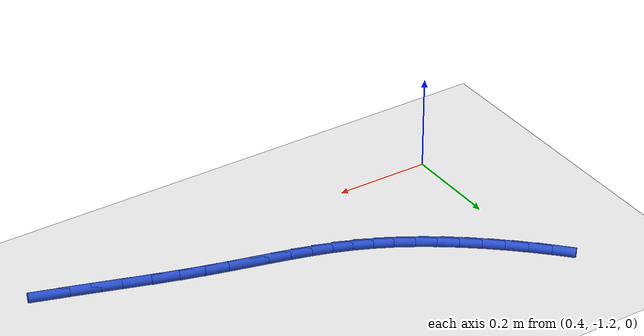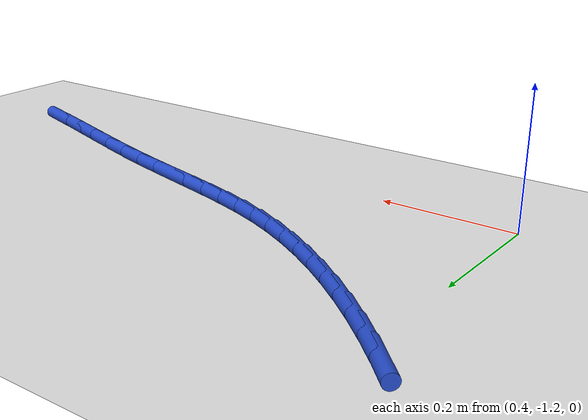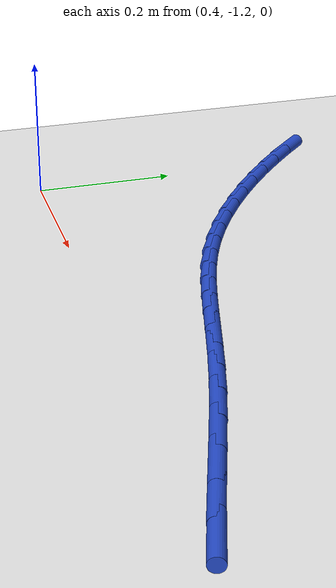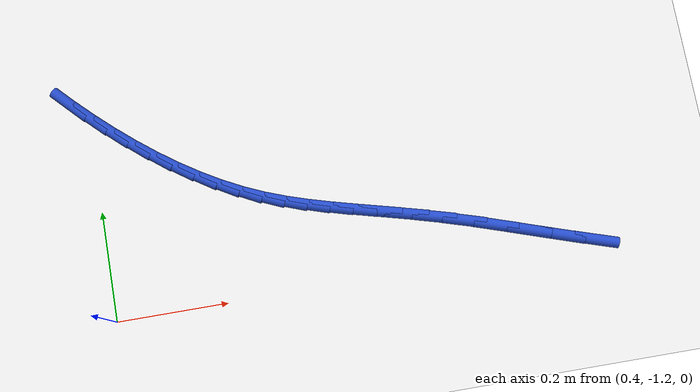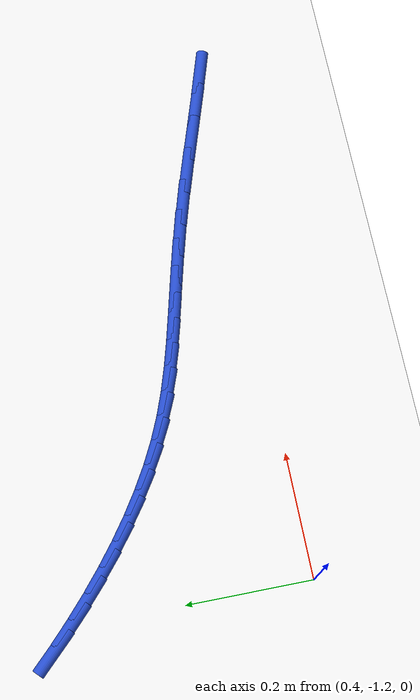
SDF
<sdf version="1.6">
 <world name="default">
  <model name="ground_plane">
   <static>1</static>
   <link name="link">
    <collision name="collision">
     <geometry><plane><normal>0 0 1</normal><size>100 100</size></plane></geometry>
     <surface><friction><ode><mu>100</mu><mu2>50</mu2></ode></friction></surface>
    </collision>
    <visual name="visual">
     <cast_shadows>0</cast_shadows>
     <geometry><plane><normal>0 0 1</normal><size>100 100</size></plane></geometry>
     <material>
      <script><uri>file://media/materials/scripts/gazebo.material</uri><name>Gazebo/WhiteGlow</name></script>
     </material>
    </visual>
   </link>
  </model>
  <model name="line">
   <link name="link_129">
    <pose>1.265800692312108 -1.1981198632071832 0.01 0 1.57 -0.30989875900197233</pose>
    <collision name="collision">
     <geometry><cylinder><radius>0.01</radius><length>0.08</length></cylinder></geometry>
    </collision>
    <visual name="visual">
     <material>
      <script><name>Gazebo/Blue</name><uri>file://media/materials/scripts/gazebo.material</uri></script>
     </material>
     <geometry><cylinder><radius>0.01</radius><length>0.08</length></cylinder></geometry>
    </visual>
   </link>
   <link name="link_130">
    <pose>1.2083232273353477 -1.1797146662145381 0.01 0 1.57 -0.3209708574697782</pose>
    <collision name="collision">
     <geometry><cylinder><radius>0.01</radius><length>0.08</length></cylinder></geometry>
    </collision>
    <visual name="visual">
     <material>
      <script><name>Gazebo/Blue</name><uri>file://media/materials/scripts/gazebo.material</uri></script>
     </material>
     <geometry><cylinder><radius>0.01</radius><length>0.08</length></cylinder></geometry>
    </visual>
   </link>
   <link name="link_131">
    <pose>1.150829657418159 -1.1605999383768624 0.01 0 1.57 -0.3222626188145715</pose>
    <collision name="collision">
     <geometry><cylinder><radius>0.01</radius><length>0.08</length></cylinder></geometry>
    </collision>
    <visual name="visual">
     <material>
      <script><name>Gazebo/Blue</name><uri>file://media/materials/scripts/gazebo.material</uri></script>
     </material>
     <geometry><cylinder><radius>0.01</radius><length>0.08</length></cylinder></geometry>
    </visual>
   </link>
   <link name="link_132">
    <pose>1.0943073004221666 -1.1417269882321417 0.01 0 1.57 -0.31334680897451433</pose>
    <collision name="collision">
     <geometry><cylinder><radius>0.01</radius><length>0.08</length></cylinder></geometry>
    </collision>
    <visual name="visual">
     <material>
      <script><name>Gazebo/Blue</name><uri>file://media/materials/scripts/gazebo.material</uri></script>
     </material>
     <geometry><cylinder><radius>0.01</radius><length>0.08</length></cylinder></geometry>
    </visual>
   </link>
   <link name="link_133">
    <pose>1.0397434742089908 -1.1240471243183592 0.01 0 1.57 -0.2931323162996784</pose>
    <collision name="collision">
     <geometry><cylinder><radius>0.01</radius><length>0.08</length></cylinder></geometry>
    </collision>
    <visual name="visual">
     <material>
      <script><name>Gazebo/Blue</name><uri>file://media/materials/scripts/gazebo.material</uri></script>
     </material>
     <geometry><cylinder><radius>0.01</radius><length>0.08</length></cylinder></geometry>
    </visual>
   </link>
   <link name="link_134">
    <pose>0.9880743739879655 -1.108451982458618 0.01 0 1.57 -0.27078050237366325</pose>
    <collision name="collision">
     <geometry><cylinder><radius>0.01</radius><length>0.08</length></cylinder></geometry>
    </collision>
    <visual name="visual">
     <material>
      <script><name>Gazebo/Blue</name><uri>file://media/materials/scripts/gazebo.material</uri></script>
     </material>
     <geometry><cylinder><radius>0.01</radius><length>0.08</length></cylinder></geometry>
    </visual>
   </link>
   <link name="link_135">
    <pose>0.9394931729404226 -1.0949659089352126 0.01 0 1.57 -0.2560740211445743</pose>
    <collision name="collision">
     <geometry><cylinder><radius>0.01</radius><length>0.08</length></cylinder></geometry>
    </collision>
    <visual name="visual">
     <material>
      <script><name>Gazebo/Blue</name><uri>file://media/materials/scripts/gazebo.material</uri></script>
     </material>
     <geometry><cylinder><radius>0.01</radius><length>0.08</length></cylinder></geometry>
    </visual>
   </link>
   <link name="link_136">
    <pose>0.8936320742084444 -1.0829584599577193 0.01 0 1.57 -0.25134209338558244</pose>
    <collision name="collision">
     <geometry><cylinder><radius>0.01</radius><length>0.08</length></cylinder></geometry>
    </collision>
    <visual name="visual">
     <material>
      <script><name>Gazebo/Blue</name><uri>file://media/materials/scripts/gazebo.material</uri></script>
     </material>
     <geometry><cylinder><radius>0.01</radius><length>0.08</length></cylinder></geometry>
    </visual>
   </link>
   <link name="link_137">
    <pose>0.8501094726858519 -1.0717830741122178 0.01 0 1.57 -0.2584830062230151</pose>
    <collision name="collision">
     <geometry><cylinder><radius>0.01</radius><length>0.08</length></cylinder></geometry>
    </collision>
    <visual name="visual">
     <material>
      <script><name>Gazebo/Blue</name><uri>file://media/materials/scripts/gazebo.material</uri></script>
     </material>
     <geometry><cylinder><radius>0.01</radius><length>0.08</length></cylinder></geometry>
    </visual>
   </link>
   <link name="link_138">
    <pose>0.8085437632664624 -1.0607931899847878 0.01 0 1.57 -0.2788800476282161</pose>
    <collision name="collision">
     <geometry><cylinder><radius>0.01</radius><length>0.08</length></cylinder></geometry>
    </collision>
    <visual name="visual">
     <material>
      <script><name>Gazebo/Blue</name><uri>file://media/materials/scripts/gazebo.material</uri></script>
     </material>
     <geometry><cylinder><radius>0.01</radius><length>0.08</length></cylinder></geometry>
    </visual>
   </link>
   <link name="link_139">
    <pose>0.7685533408440939 -1.0493422461615078 0.01 0 1.57 -0.31305704497614156</pose>
    <collision name="collision">
     <geometry><cylinder><radius>0.01</radius><length>0.08</length></cylinder></geometry>
    </collision>
    <visual name="visual">
     <material>
      <script><name>Gazebo/Blue</name><uri>file://media/materials/scripts/gazebo.material</uri></script>
     </material>
     <geometry><cylinder><radius>0.01</radius><length>0.08</length></cylinder></geometry>
    </visual>
   </link>
   <link name="link_140">
    <pose>0.7297566003125655 -1.0367836812284583 0.01 0 1.57 -0.3603507261635988</pose>
    <collision name="collision">
     <geometry><cylinder><radius>0.01</radius><length>0.08</length></cylinder></geometry>
    </collision>
    <visual name="visual">
     <material>
      <script><name>Gazebo/Blue</name><uri>file://media/materials/scripts/gazebo.material</uri></script>
     </material>
     <geometry><cylinder><radius>0.01</radius><length>0.08</length></cylinder></geometry>
    </visual>
   </link>
   <link name="link_141">
    <pose>0.691771936565695 -1.0224709337717184 0.01 0 1.57 -0.4184305589417514</pose>
    <collision name="collision">
     <geometry><cylinder><radius>0.01</radius><length>0.08</length></cylinder></geometry>
    </collision>
    <visual name="visual">
     <material>
      <script><name>Gazebo/Blue</name><uri>file://media/materials/scripts/gazebo.material</uri></script>
     </material>
     <geometry><cylinder><radius>0.01</radius><length>0.08</length></cylinder></geometry>
    </visual>
   </link>
   <link name="link_142">
    <pose>0.654227366749413 -1.0057751852145036 0.01 0 1.57 -0.4780423623562009</pose>
    <collision name="collision">
     <geometry><cylinder><radius>0.01</radius><length>0.08</length></cylinder></geometry>
    </collision>
    <visual name="visual">
     <material>
      <script><name>Gazebo/Blue</name><uri>file://media/materials/scripts/gazebo.material</uri></script>
     </material>
     <geometry><cylinder><radius>0.01</radius><length>0.08</length></cylinder></geometry>
    </visual>
   </link>
   <link name="link_143">
    <pose>0.6169696964435438 -0.9864710493059226 0.01 0 1.57 -0.5322734104786153</pose>
    <collision name="collision">
     <geometry><cylinder><radius>0.01</radius><length>0.08</length></cylinder></geometry>
    </collision>
    <visual name="visual">
     <material>
      <script><name>Gazebo/Blue</name><uri>file://media/materials/scripts/gazebo.material</uri></script>
     </material>
     <geometry><cylinder><radius>0.01</radius><length>0.08</length></cylinder></geometry>
    </visual>
   </link>
   <link name="link_144">
    <pose>0.5800631269072463 -0.9647340039678043 0.01 0 1.57 -0.5814454997278413</pose>
    <collision name="collision">
     <geometry><cylinder><radius>0.01</radius><length>0.08</length></cylinder></geometry>
    </collision>
    <visual name="visual">
     <material>
      <script><name>Gazebo/Blue</name><uri>file://media/materials/scripts/gazebo.material</uri></script>
     </material>
     <geometry><cylinder><radius>0.01</radius><length>0.08</length></cylinder></geometry>
    </visual>
   </link>
   <link name="link_145">
    <pose>0.5435812030973184 -0.9407567563219119 0.01 0 1.57 -0.6261511873069738</pose>
    <collision name="collision">
     <geometry><cylinder><radius>0.01</radius><length>0.08</length></cylinder></geometry>
    </collision>
    <visual name="visual">
     <material>
      <script><name>Gazebo/Blue</name><uri>file://media/materials/scripts/gazebo.material</uri></script>
     </material>
     <geometry><cylinder><radius>0.01</radius><length>0.08</length></cylinder></geometry>
    </visual>
   </link>
   <link name="link_146">
    <pose>0.5075974699705591 -0.9147320134900102 0.01 0 1.57 -0.6669430886489641</pose>
    <collision name="collision">
     <geometry><cylinder><radius>0.01</radius><length>0.08</length></cylinder></geometry>
    </collision>
    <visual name="visual">
     <material>
      <script><name>Gazebo/Blue</name><uri>file://media/materials/scripts/gazebo.material</uri></script>
     </material>
     <geometry><cylinder><radius>0.01</radius><length>0.08</length></cylinder></geometry>
    </visual>
   </link>
   <link name="link_147">
    <pose>0.47218547248376547 -0.8868524825938611 0.01 0 1.57 -0.7043254268165996</pose>
    <collision name="collision">
     <geometry><cylinder><radius>0.01</radius><length>0.08</length></cylinder></geometry>
    </collision>
    <visual name="visual">
     <material>
      <script><name>Gazebo/Blue</name><uri>file://media/materials/scripts/gazebo.material</uri></script>
     </material>
     <geometry><cylinder><radius>0.01</radius><length>0.08</length></cylinder></geometry>
    </visual>
   </link>
   <link name="link_148">
    <pose>0.4374187555937378 -0.8573108707552305 0.01 0 1.57 -0.7387526796438975</pose>
    <collision name="collision">
     <geometry><cylinder><radius>0.01</radius><length>0.08</length></cylinder></geometry>
    </collision>
    <visual name="visual">
     <material>
      <script><name>Gazebo/Blue</name><uri>file://media/materials/scripts/gazebo.material</uri></script>
     </material>
     <geometry><cylinder><radius>0.01</radius><length>0.08</length></cylinder></geometry>
    </visual>
   </link>
   <link name="link_149">
    <pose>0.4033708642572733 -0.8262998850958809 0.01 0 1.57 -0.7706323521227572</pose>
    <collision name="collision">
     <geometry><cylinder><radius>0.01</radius><length>0.08</length></cylinder></geometry>
    </collision>
    <visual name="visual">
     <material>
      <script><name>Gazebo/Blue</name><uri>file://media/materials/scripts/gazebo.material</uri></script>
     </material>
     <geometry><cylinder><radius>0.01</radius><length>0.08</length></cylinder></geometry>
    </visual>
   </link>
   <link name="link_150">
    <pose>0.3701153434311703 -0.794012232737576 0.01 0 1.57 -0.800329967180028</pose>
    <collision name="collision">
     <geometry><cylinder><radius>0.01</radius><length>0.08</length></cylinder></geometry>
    </collision>
    <visual name="visual">
     <material>
      <script><name>Gazebo/Blue</name><uri>file://media/materials/scripts/gazebo.material</uri></script>
     </material>
     <geometry><cylinder><radius>0.01</radius><length>0.08</length></cylinder></geometry>
    </visual>
   </link>
  </model>
 </world>
</sdf>
